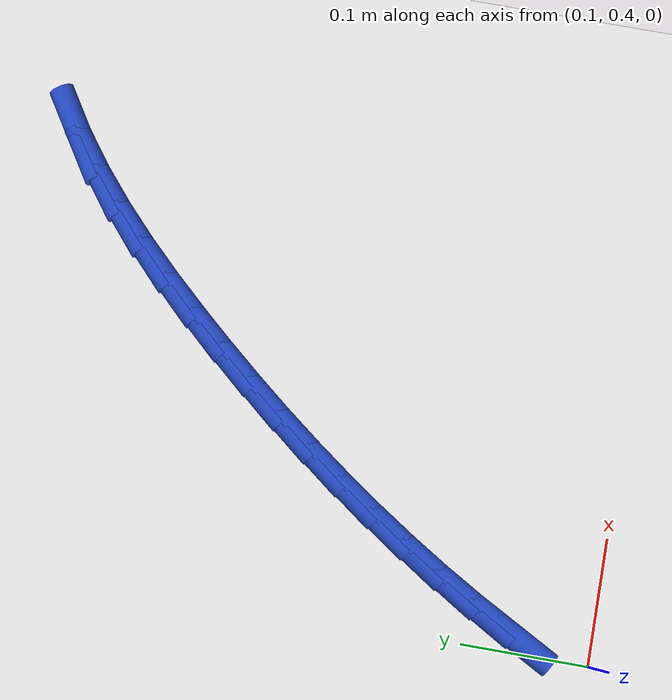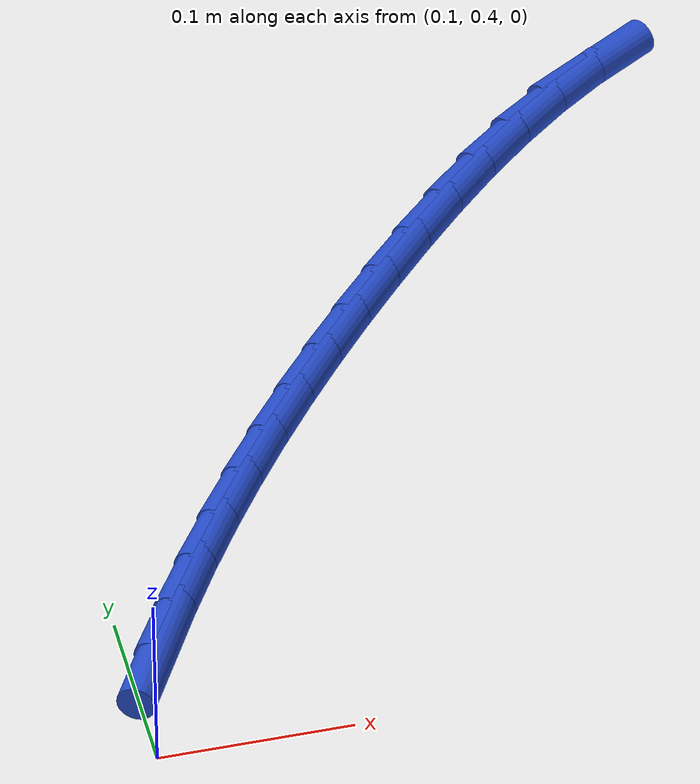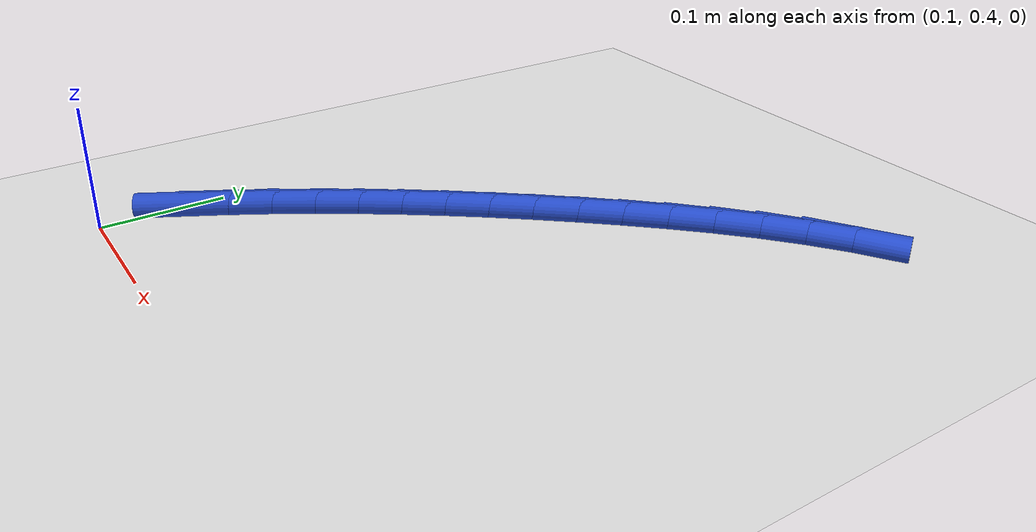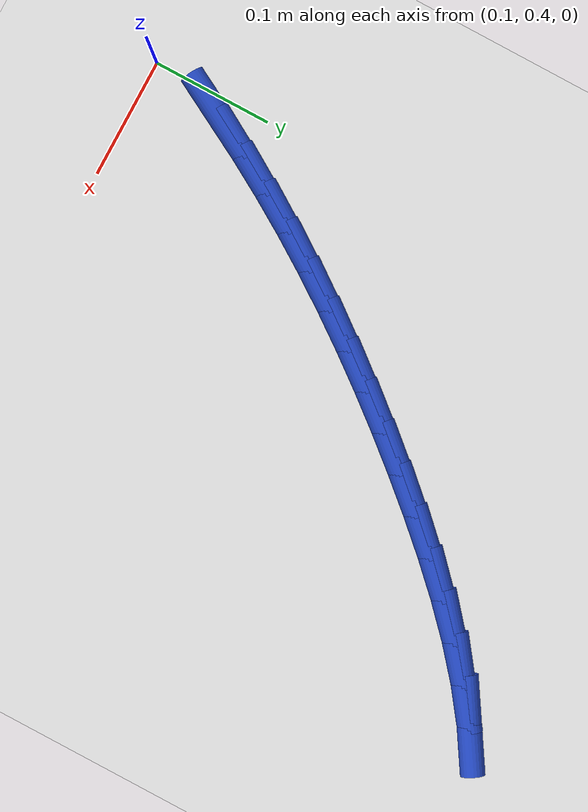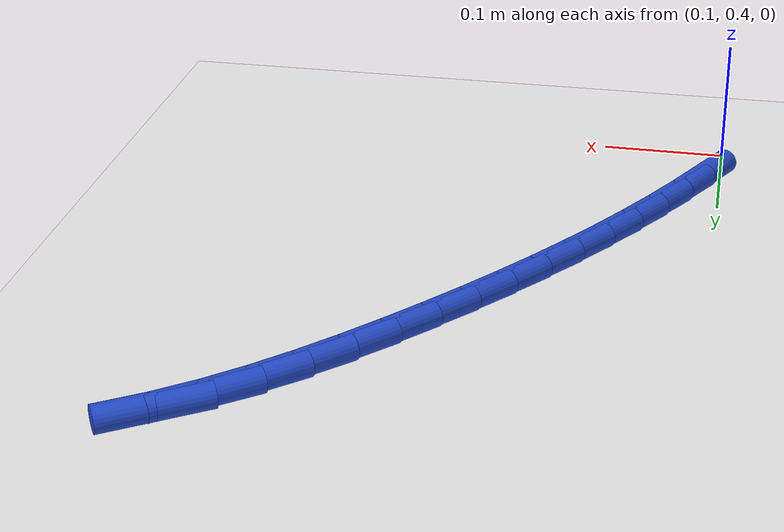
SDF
<sdf version="1.6">
 <world name="default">
  <model name="ground_plane">
   <static>1</static>
   <link name="link">
    <collision name="collision">
     <geometry><plane><normal>0 0 1</normal><size>100 100</size></plane></geometry>
     <surface><friction><ode><mu>100</mu><mu2>50</mu2></ode></friction></surface>
    </collision>
    <visual name="visual">
     <cast_shadows>0</cast_shadows>
     <geometry><plane><normal>0 0 1</normal><size>100 100</size></plane></geometry>
     <material>
      <script><uri>file://media/materials/scripts/gazebo.material</uri><name>Gazebo/WhiteGlow</name></script>
     </material>
    </visual>
   </link>
  </model>
  <model name="line">
   <link name="link_14">
    <pose>0.11522092356361464 0.4653317278486957 0.01 0 1.57 1.0728595686364584</pose>
    <collision name="collision">
     <geometry><cylinder><radius>0.01</radius><length>0.08</length></cylinder></geometry>
    </collision>
    <visual name="visual">
     <material>
      <script><name>Gazebo/Blue</name><uri>file://media/materials/scripts/gazebo.material</uri></script>
     </material>
     <geometry><cylinder><radius>0.01</radius><length>0.08</length></cylinder></geometry>
    </visual>
   </link>
   <link name="link_15">
    <pose>0.13169254017926996 0.4956312382981011 0.01 0 1.57 1.0430343632465913</pose>
    <collision name="collision">
     <geometry><cylinder><radius>0.01</radius><length>0.08</length></cylinder></geometry>
    </collision>
    <visual name="visual">
     <material>
      <script><name>Gazebo/Blue</name><uri>file://media/materials/scripts/gazebo.material</uri></script>
     </material>
     <geometry><cylinder><radius>0.01</radius><length>0.08</length></cylinder></geometry>
    </visual>
   </link>
   <link name="link_16">
    <pose>0.14909657224877892 0.5254881543458305 0.01 0 1.57 1.0144252605430866</pose>
    <collision name="collision">
     <geometry><cylinder><radius>0.01</radius><length>0.08</length></cylinder></geometry>
    </collision>
    <visual name="visual">
     <material>
      <script><name>Gazebo/Blue</name><uri>file://media/materials/scripts/gazebo.material</uri></script>
     </material>
     <geometry><cylinder><radius>0.01</radius><length>0.08</length></cylinder></geometry>
    </visual>
   </link>
   <link name="link_17">
    <pose>0.16739220068525873 0.5549068106534183 0.01 0 1.57 0.9870272946597509</pose>
    <collision name="collision">
     <geometry><cylinder><radius>0.01</radius><length>0.08</length></cylinder></geometry>
    </collision>
    <visual name="visual">
     <material>
      <script><name>Gazebo/Blue</name><uri>file://media/materials/scripts/gazebo.material</uri></script>
     </material>
     <geometry><cylinder><radius>0.01</radius><length>0.08</length></cylinder></geometry>
    </visual>
   </link>
   <link name="link_18">
    <pose>0.18653860640182668 0.5838915418823983 0.01 0 1.57 0.9608283861322301</pose>
    <collision name="collision">
     <geometry><cylinder><radius>0.01</radius><length>0.08</length></cylinder></geometry>
    </collision>
    <visual name="visual">
     <material>
      <script><name>Gazebo/Blue</name><uri>file://media/materials/scripts/gazebo.material</uri></script>
     </material>
     <geometry><cylinder><radius>0.01</radius><length>0.08</length></cylinder></geometry>
    </visual>
   </link>
   <link name="link_19">
    <pose>0.20649497031160002 0.6124466826943054 0.01 0 1.57 0.9358106203439434</pose>
    <collision name="collision">
     <geometry><cylinder><radius>0.01</radius><length>0.08</length></cylinder></geometry>
    </collision>
    <visual name="visual">
     <material>
      <script><name>Gazebo/Blue</name><uri>file://media/materials/scripts/gazebo.material</uri></script>
     </material>
     <geometry><cylinder><radius>0.01</radius><length>0.08</length></cylinder></geometry>
    </visual>
   </link>
   <link name="link_20">
    <pose>0.22722047332769596 0.6405765677506731 0.01 0 1.57 0.9119514376425432</pose>
    <collision name="collision">
     <geometry><cylinder><radius>0.01</radius><length>0.08</length></cylinder></geometry>
    </collision>
    <visual name="visual">
     <material>
      <script><name>Gazebo/Blue</name><uri>file://media/materials/scripts/gazebo.material</uri></script>
     </material>
     <geometry><cylinder><radius>0.01</radius><length>0.08</length></cylinder></geometry>
    </visual>
   </link>
   <link name="link_21">
    <pose>0.24867429636323188 0.6682855317130362 0.01 0 1.57 0.8892247173132739</pose>
    <collision name="collision">
     <geometry><cylinder><radius>0.01</radius><length>0.08</length></cylinder></geometry>
    </collision>
    <visual name="visual">
     <material>
      <script><name>Gazebo/Blue</name><uri>file://media/materials/scripts/gazebo.material</uri></script>
     </material>
     <geometry><cylinder><radius>0.01</radius><length>0.08</length></cylinder></geometry>
    </visual>
   </link>
   <link name="link_22">
    <pose>0.27081562033132495 0.6955779092429286 0.01 0 1.57 0.8676017466082129</pose>
    <collision name="collision">
     <geometry><cylinder><radius>0.01</radius><length>0.08</length></cylinder></geometry>
    </collision>
    <visual name="visual">
     <material>
      <script><name>Gazebo/Blue</name><uri>file://media/materials/scripts/gazebo.material</uri></script>
     </material>
     <geometry><cylinder><radius>0.01</radius><length>0.08</length></cylinder></geometry>
    </visual>
   </link>
   <link name="link_23">
    <pose>0.29360362614509244 0.7224580350018847 0.01 0 1.57 0.8469890773231284</pose>
    <collision name="collision">
     <geometry><cylinder><radius>0.01</radius><length>0.08</length></cylinder></geometry>
    </collision>
    <visual name="visual">
     <material>
      <script><name>Gazebo/Blue</name><uri>file://media/materials/scripts/gazebo.material</uri></script>
     </material>
     <geometry><cylinder><radius>0.01</radius><length>0.08</length></cylinder></geometry>
    </visual>
   </link>
   <link name="link_24">
    <pose>0.3169983939395713 0.7489279005185449 0.01 0 1.57 0.8236798708171605</pose>
    <collision name="collision">
     <geometry><cylinder><radius>0.01</radius><length>0.08</length></cylinder></geometry>
    </collision>
    <visual name="visual">
     <material>
      <script><name>Gazebo/Blue</name><uri>file://media/materials/scripts/gazebo.material</uri></script>
     </material>
     <geometry><cylinder><radius>0.01</radius><length>0.08</length></cylinder></geometry>
    </visual>
   </link>
   <link name="link_25">
    <pose>0.34101194092581316 0.7748541631303625 0.01 0 1.57 0.7918041883691699</pose>
    <collision name="collision">
     <geometry><cylinder><radius>0.01</radius><length>0.08</length></cylinder></geometry>
    </collision>
    <visual name="visual">
     <material>
      <script><name>Gazebo/Blue</name><uri>file://media/materials/scripts/gazebo.material</uri></script>
     </material>
     <geometry><cylinder><radius>0.01</radius><length>0.08</length></cylinder></geometry>
    </visual>
   </link>
   <link name="link_26">
    <pose>0.36573564836350747 0.7998966785957256 0.01 0 1.57 0.7503292635145157</pose>
    <collision name="collision">
     <geometry><cylinder><radius>0.01</radius><length>0.08</length></cylinder></geometry>
    </collision>
    <visual name="visual">
     <material>
      <script><name>Gazebo/Blue</name><uri>file://media/materials/scripts/gazebo.material</uri></script>
     </material>
     <geometry><cylinder><radius>0.01</radius><length>0.08</length></cylinder></geometry>
    </visual>
   </link>
   <link name="link_27">
    <pose>0.3912675931842261 0.8236978555349047 0.01 0 1.57 0.6985291775158372</pose>
    <collision name="collision">
     <geometry><cylinder><radius>0.01</radius><length>0.08</length></cylinder></geometry>
    </collision>
    <visual name="visual">
     <material>
      <script><name>Gazebo/Blue</name><uri>file://media/materials/scripts/gazebo.material</uri></script>
     </material>
     <geometry><cylinder><radius>0.01</radius><length>0.08</length></cylinder></geometry>
    </visual>
   </link>
   <link name="link_28">
    <pose>0.41770585231954077 0.8459001025681697 0.01 0 1.57 0.6356127868367223</pose>
    <collision name="collision">
     <geometry><cylinder><radius>0.01</radius><length>0.08</length></cylinder></geometry>
    </collision>
    <visual name="visual">
     <material>
      <script><name>Gazebo/Blue</name><uri>file://media/materials/scripts/gazebo.material</uri></script>
     </material>
     <geometry><cylinder><radius>0.01</radius><length>0.08</length></cylinder></geometry>
    </visual>
   </link>
   <link name="link_29">
    <pose>0.44514850270102396 0.8661458283157916 0.01 0 1.57 0.5608863188310123</pose>
    <collision name="collision">
     <geometry><cylinder><radius>0.01</radius><length>0.08</length></cylinder></geometry>
    </collision>
    <visual name="visual">
     <material>
      <script><name>Gazebo/Blue</name><uri>file://media/materials/scripts/gazebo.material</uri></script>
     </material>
     <geometry><cylinder><radius>0.01</radius><length>0.08</length></cylinder></geometry>
    </visual>
   </link>
  </model>
 </world>
</sdf>
